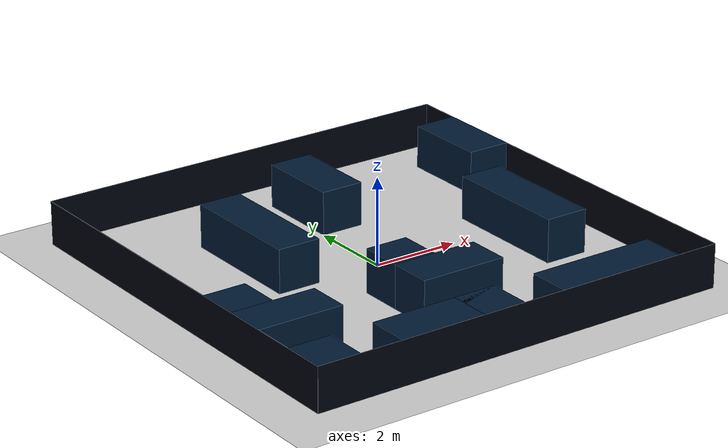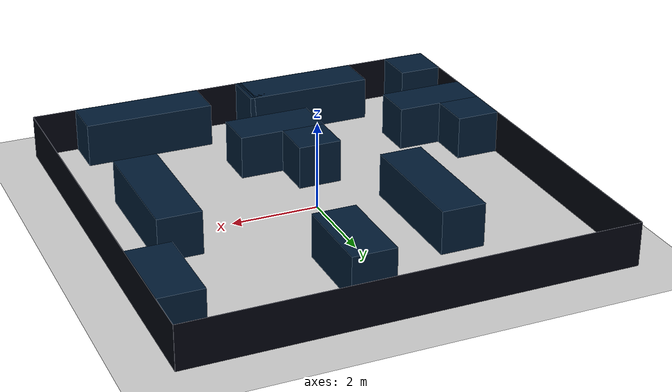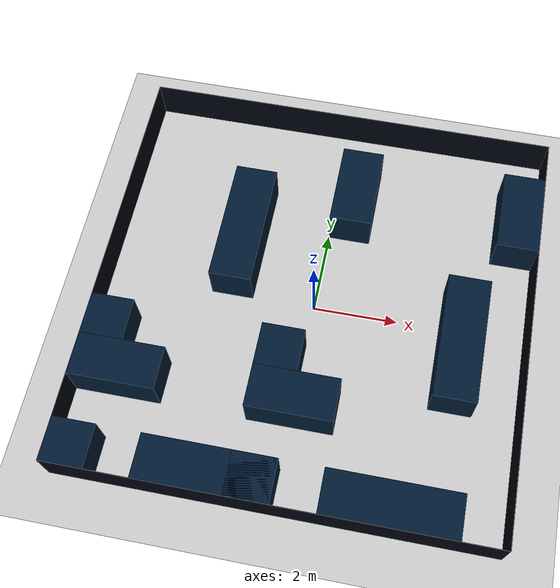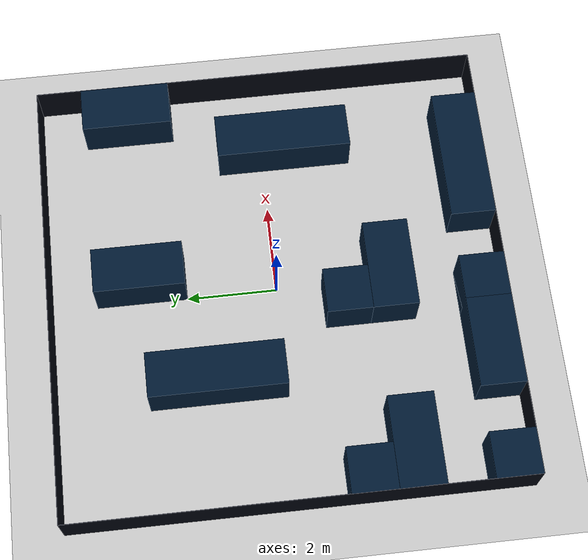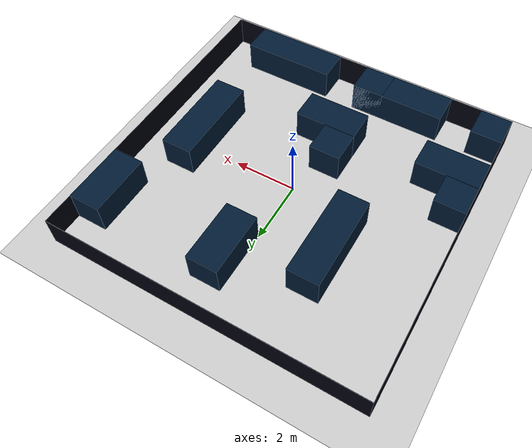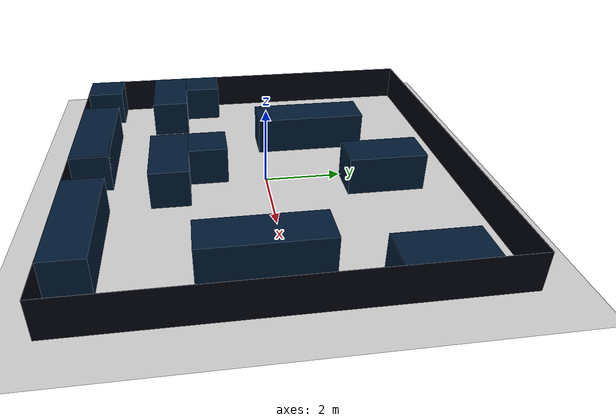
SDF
<?xml version="1.0"?>
<sdf version='1.8'>
    <world name='maze'>
        <physics name='1ms' type='ignored'>
            <max_step_size>0.003</max_step_size>
            <real_time_factor>1</real_time_factor>
            <real_time_update_rate>1000</real_time_update_rate>
        </physics>
        <plugin name='ignition::gazebo::systems::Physics' filename='ignition-gazebo-physics-system' />
        <plugin name='ignition::gazebo::systems::UserCommands' filename='ignition-gazebo-user-commands-system' />
        <plugin name='ignition::gazebo::systems::SceneBroadcaster' filename='ignition-gazebo-scene-broadcaster-system' />
        <plugin name='ignition::gazebo::systems::Contact' filename='ignition-gazebo-contact-system' />
        <light name='sun' type='directional'>
            <cast_shadows>1</cast_shadows>
            <pose>0 0 10 0 -0 0</pose>
            <diffuse>0.8 0.8 0.8 1</diffuse>
            <specular>0.2 0.2 0.2 1</specular>
            <attenuation>
                <range>1000</range>
                <constant>0.90000000000000002</constant>
                <linear>0.01</linear>
                <quadratic>0.001</quadratic>
            </attenuation>
            <direction>-0.5 0.1 -0.9</direction>
            <spot>
                <inner_angle>0</inner_angle>
                <outer_angle>0</outer_angle>
                <falloff>0</falloff>
            </spot>
        </light>
        <gravity>0 0 -9.8</gravity>
        <magnetic_field>6e-06 2.3e-05 -4.2e-05</magnetic_field>
        <atmosphere type='adiabatic' />
        <scene>
            <ambient>0.4 0.4 0.4 1</ambient>
            <background>0.7 0.7 0.7 1</background>
            <shadows>1</shadows>
        </scene>
        <model name='ground_plane'>
            <static>1</static>
            <link name='ground'>
                <collision name='collision'>
                    <geometry>
                        <plane>
                            <normal>0 0 1</normal>
                            <size>50 50</size>
                        </plane>
                    </geometry>
                    <surface>
                        <friction>
                            <ode>
                                <mu>0.9</mu>
                                <mu2>0.9</mu2>
                            </ode>
                        </friction>
                        <bounce />
                        <contact />
                    </surface>
                </collision>
                <visual name='visual'>
                    <geometry>
                        <plane>
                            <normal>0 0 1</normal>
                            <size>50 50</size>
                        </plane>
                    </geometry>
                    <material>
                        <ambient>0.8 0.8 0.8 1</ambient>
                        <diffuse>0.8 0.8 0.8 1</diffuse>
                        <specular>0.8 0.8 0.8 1</specular>
                    </material>
                    <plugin name='__default__' filename='__default__' />
                </visual>
            </link>
            <plugin name='__default__' filename='__default__' />
            <pose>0 0 0 0 -0 0</pose>
        </model>

        <model name='border'>
            <pose>0 0 1 0 0 0</pose>
            <static>true</static>
            <link name='wall1'>
                <pose>-5 0 -0.5 0 0 0</pose>
                <static>true</static>
                <collision name='wall1_collision'>
                    <geometry>
                        <box>
                            <size>0.01 10 1</size>
                        </box>
                    </geometry>
                </collision>
                <visual name='wall1_visual'>
                    <geometry>
                        <box>
                            <size>0.01 10 1</size>
                        </box>
                    </geometry>
                    <material>
                        <ambient>0.1 0.1 0.1 1</ambient>
                        <diffuse>0 0.01 0.05 1</diffuse>
                        <specular>0 0.01 0.05 1</specular>
                    </material>
                </visual>
            </link>
            <link name='wall2'>
                <pose>5 0 -0.5 0 0 0</pose>
                <static>true</static>
                <collision name='wall2_collision'>
                    <geometry>
                        <box>
                            <size>0.01 10 1</size>
                        </box>
                    </geometry>
                </collision>
                <visual name='wall2_visual'>
                    <geometry>
                        <box>
                            <size>0.01 10 1</size>
                        </box>
                    </geometry>
                    <material>
                        <ambient>0.1 0.1 0.1 1</ambient>
                        <diffuse>0 0.01 0.05 1</diffuse>
                        <specular>0 0.01 0.05 1</specular>
                    </material>
                </visual>
            </link>
            <link name='wall3'>
                <pose>0 5 -0.5 0 0 0</pose>
                <static>true</static>
                <collision name='wall3_collision'>
                    <geometry>
                        <box>
                            <size>10 0.01 1</size>
                        </box>
                    </geometry>
                </collision>
                <visual name='wall3_visual'>
                    <geometry>
                        <box>
                            <size>10 0.01 1</size>
                        </box>
                    </geometry>
                    <material>
                        <ambient>0.1 0.1 0.1 1</ambient>
                        <diffuse>0 0.01 0.05 1</diffuse>
                        <specular>0 0.01 0.05 1</specular>
                    </material>
                </visual>
            </link>
            <link name='wall4'>
                <pose>0 -5 -0.5 0 0 0</pose>
                <static>true</static>
                <collision name='wall4_collision'>
                    <geometry>
                        <box>
                            <size>10 0.01 1</size>
                        </box>
                    </geometry>
                    <material>
                        <ambient>0.1 0.1 0.1 1</ambient>
                        <diffuse>0 0.01 0.05 1</diffuse>
                        <specular>0 0.01 0.05 1</specular>
                    </material>
                </collision>
                <visual name='wall4_visual'>
                    <geometry>
                        <box>
                            <size>10 0.01 1</size>
                        </box>
                    </geometry>
                    <material>
                        <ambient>0.1 0.1 0.1 1</ambient>
                        <diffuse>0 0.01 0.05 1</diffuse>
                        <specular>0 0.01 0.05 1</specular>
                    </material>
                </visual>
            </link>
        </model>

        <model name='obstacles'>
            <pose>0 0 0.5 0 0 0</pose>
            <static>true</static>

            <link name='wall13'>
                <pose>0 -2.5 0 0 0 0</pose>
                <static>true</static>
                <collision name='wall13_collision'>
                    <geometry>
                        <box>
                            <size>2 1 1</size>
                        </box>
                    </geometry>
                </collision>
                <visual name='wall13_visual'>
                    <geometry>
                        <box>
                            <size>2 1 1</size>
                        </box>
                    </geometry>
                    <material>
                        <ambient>0.1 0.1 0.1 1</ambient>
                        <diffuse>0 0.1 0.2 1</diffuse>
                        <specular>0 0.01 0.05 1</specular>
                    </material>
                </visual>
            </link>

            <link name='wall14'>
                <pose>-0.5 -1.5 0 0 0 0</pose>
                <static>true</static>
                <collision name='wall14_collision'>
                    <geometry>
                        <box>
                            <size>1 1 1</size>
                        </box>
                    </geometry>
                </collision>
                <visual name='wall14_visual'>
                    <geometry>
                        <box>
                            <size>1 1 1</size>
                        </box>
                    </geometry>
                    <material>
                        <ambient>0.1 0.1 0.1 1</ambient>
                        <diffuse>0 0.1 0.2 1</diffuse>
                        <specular>0 0.01 0.05 1</specular>
                    </material>
                </visual>
            </link>

            <link name='wall15'>
                <pose>-0.5 -4.5 0 0 0 0</pose>
                <static>true</static>
                <collision name='wall15_collision'>
                    <geometry>
                        <box>
                            <size>1 1 1</size>
                        </box>
                    </geometry>
                </collision>
                <visual name='wall15_visual'>
                    <geometry>
                        <box>
                            <size>1 1 1</size>
                        </box>
                    </geometry>
                    <material>
                        <ambient>0.1 0.1 0.1 1</ambient>
                        <diffuse>0 0.1 0.2 1</diffuse>
                        <specular>0 0.01 0.05 1</specular>
                    </material>
                </visual>
            </link>

            <link name='wall17'>
                <pose>2.5 -4.5 0 0 0 0</pose>
                <static>true</static>
                <collision name='wall17_collision'>
                    <geometry>
                        <box>
                            <size>3 1 1</size>
                        </box>
                    </geometry>
                </collision>
                <visual name='wall17_visual'>
                    <geometry>
                        <box>
                            <size>3 1 1</size>
                        </box>
                    </geometry>
                    <material>
                        <ambient>0.1 0.1 0.1 1</ambient>
                        <diffuse>0 0.1 0.2 1</diffuse>
                        <specular>0 0.01 0.05 1</specular>
                    </material>
                </visual>
            </link>

            <link name='wall22'>
                <pose>3.5 -0.5 0 0 0 0</pose>
                <static>true</static>
                <collision name='wall22_collision'>
                    <geometry>
                        <box>
                            <size>1 3 1</size>
                        </box>
                    </geometry>
                </collision>
                <visual name='wall22_visual'>
                    <geometry>
                        <box>
                            <size>1 3 1</size>
                        </box>
                    </geometry>
                    <material>
                        <ambient>0.1 0.1 0.1 1</ambient>
                        <diffuse>0 0.1 0.2 1</diffuse>
                        <specular>0 0.01 0.05 1</specular>
                    </material>
                </visual>
            </link>

            <link name='wall31'>
                <pose>4.5 3 0 0 0 0</pose>
                <static>true</static>
                <collision name='wall31_collision'>
                    <geometry>
                        <box>
                            <size>1 2 1</size>
                        </box>
                    </geometry>
                </collision>
                <visual name='wall31_visual'>
                    <geometry>
                        <box>
                            <size>1 2 1</size>
                        </box>
                    </geometry>
                    <material>
                        <ambient>0.1 0.1 0.1 1</ambient>
                        <diffuse>0 0.1 0.2 1</diffuse>
                        <specular>0 0.01 0.05 1</specular>
                    </material>
                </visual>
            </link>
        </model>

        <model name='obstacles 2'>
            <pose>-4 0 0.5 0 0 0</pose>
            <static>true</static>

            <link name='wall13'>
                <pose>0 -2.5 0 0 0 0</pose>
                <static>true</static>
                <collision name='wall13_collision'>
                    <geometry>
                        <box>
                            <size>2 1 1</size>
                        </box>
                    </geometry>
                </collision>
                <visual name='wall13_visual'>
                    <geometry>
                        <box>
                            <size>2 1 1</size>
                        </box>
                    </geometry>
                    <material>
                        <ambient>0.1 0.1 0.1 1</ambient>
                        <diffuse>0 0.1 0.2 1</diffuse>
                        <specular>0 0.01 0.05 1</specular>
                    </material>
                </visual>
            </link>

            <link name='wall14'>
                <pose>-0.5 -1.5 0 0 0 0</pose>
                <static>true</static>
                <collision name='wall14_collision'>
                    <geometry>
                        <box>
                            <size>1 1 1</size>
                        </box>
                    </geometry>
                </collision>
                <visual name='wall14_visual'>
                    <geometry>
                        <box>
                            <size>1 1 1</size>
                        </box>
                    </geometry>
                    <material>
                        <ambient>0.1 0.1 0.1 1</ambient>
                        <diffuse>0 0.1 0.2 1</diffuse>
                        <specular>0 0.01 0.05 1</specular>
                    </material>
                </visual>
            </link>

            <link name='wall15'>
                <pose>-0.5 -4.5 0 0 0 0</pose>
                <static>true</static>
                <collision name='wall15_collision'>
                    <geometry>
                        <box>
                            <size>1 1 1</size>
                        </box>
                    </geometry>
                </collision>
                <visual name='wall15_visual'>
                    <geometry>
                        <box>
                            <size>1 1 1</size>
                        </box>
                    </geometry>
                    <material>
                        <ambient>0.1 0.1 0.1 1</ambient>
                        <diffuse>0 0.1 0.2 1</diffuse>
                        <specular>0 0.01 0.05 1</specular>
                    </material>
                </visual>
            </link>

            <link name='wall17'>
                <pose>2.5 -4.5 0 0 0 0</pose>
                <static>true</static>
                <collision name='wall17_collision'>
                    <geometry>
                        <box>
                            <size>3 1 1</size>
                        </box>
                    </geometry>
                </collision>
                <visual name='wall17_visual'>
                    <geometry>
                        <box>
                            <size>3 1 1</size>
                        </box>
                    </geometry>
                    <material>
                        <ambient>0.1 0.1 0.1 1</ambient>
                        <diffuse>0 0.1 0.2 1</diffuse>
                        <specular>0 0.01 0.05 1</specular>
                    </material>
                </visual>
            </link>

            <link name='wall22'>
                <pose>2 1.5 0 0 0 0</pose>
                <static>true</static>
                <collision name='wall22_collision'>
                    <geometry>
                        <box>
                            <size>1 3 1</size>
                        </box>
                    </geometry>
                </collision>
                <visual name='wall22_visual'>
                    <geometry>
                        <box>
                            <size>1 3 1</size>
                        </box>
                    </geometry>
                    <material>
                        <ambient>0.1 0.1 0.1 1</ambient>
                        <diffuse>0 0.1 0.2 1</diffuse>
                        <specular>0 0.01 0.05 1</specular>
                    </material>
                </visual>
            </link>

            <link name='wall31'>
                <pose>4.5 3 0 0 0 0</pose>
                <static>true</static>
                <collision name='wall31_collision'>
                    <geometry>
                        <box>
                            <size>1 2 1</size>
                        </box>
                    </geometry>
                </collision>
                <visual name='wall31_visual'>
                    <geometry>
                        <box>
                            <size>1 2 1</size>
                        </box>
                    </geometry>
                    <material>
                        <ambient>0.1 0.1 0.1 1</ambient>
                        <diffuse>0 0.1 0.2 1</diffuse>
                        <specular>0 0.01 0.05 1</specular>
                    </material>
                </visual>
            </link>

        </model>
    </world>
</sdf>
